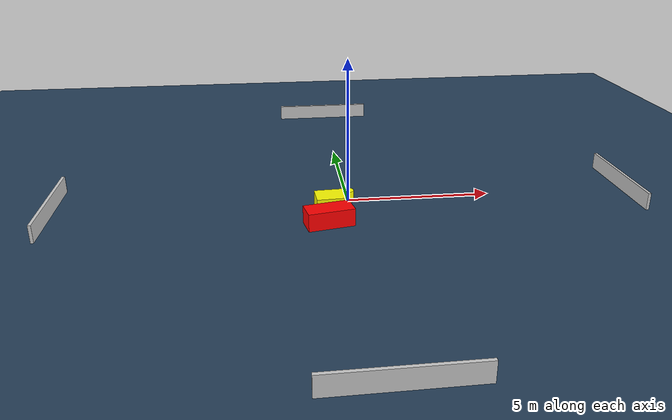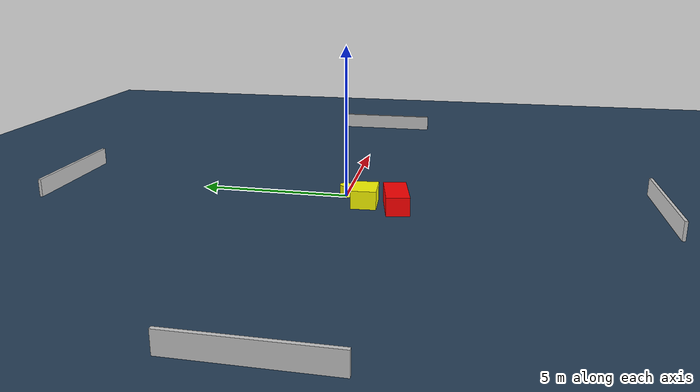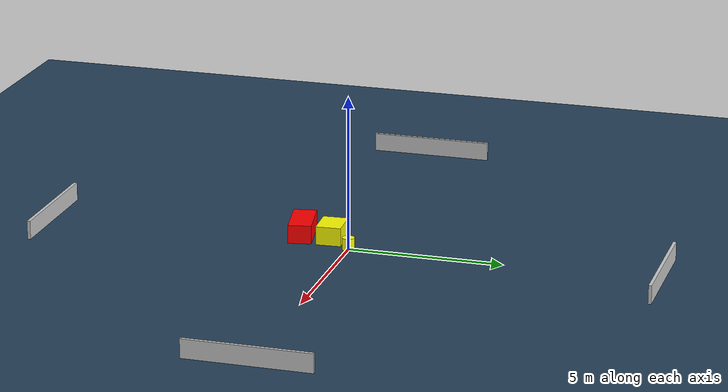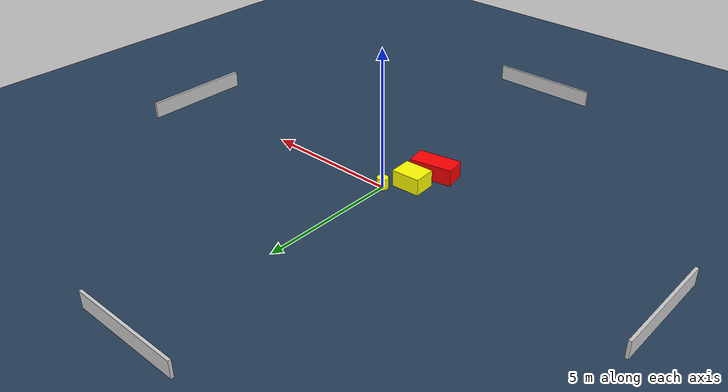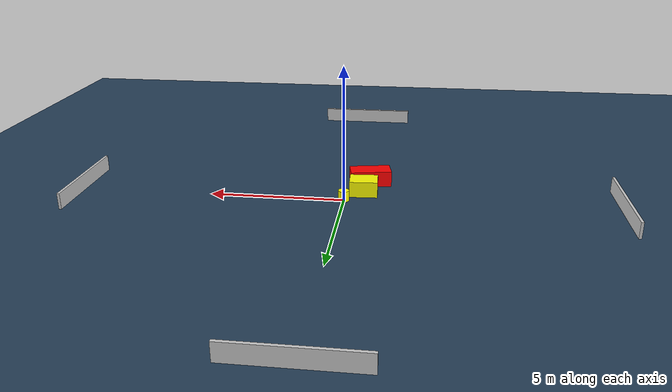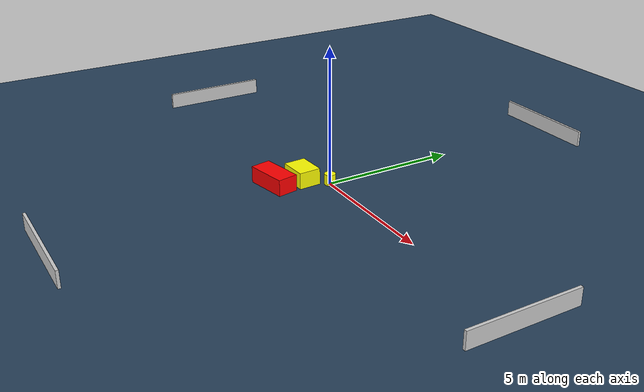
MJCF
<?xml version="1.0" ?>
<mujoco model="generated_environment">
  <option timestep="0.01" integrator="RK4" cone="elliptic"/>
  <default>
    <geom density="1"/>
  </default>
  <asset>
    <texture builtin="gradient" height="3072" name="skybox" rgb1="0.3 0.5 0.7" rgb2="0 0 0" type="skybox" width="512"/>
    <texture builtin="checker" height="300" name="groundplane" rgb1="0.2 0.3 0.4" rgb2="0.1 0.2 0.3" type="2d" width="300"/>
    <material name="groundplane" reflectance="0.2" texrepeat="5 5" texture="groundplane"/>
  </asset>
  <worldbody>
    <light dir="0 0 -1" directional="true" pos="0 0 1.5"/>
    <geom condim="3" friction="0.5 0.005 0.001" material="groundplane" name="floor" pos="0 0 0" size="0 0 0.05" type="plane"/>
    <body name="walls">
      <geom name="wall_1" condim="4" pos="-10.0 0.0 0.3" rgba="0.800000011920929 0.800000011920929 0.800000011920929 1.0" size="0.05 2.0 0.3" type="box"/>
      <geom name="wall_2" condim="4" pos="10.0 0.0 0.3" rgba="0.800000011920929 0.800000011920929 0.800000011920929 1.0" size="0.05 2.0 0.3" type="box"/>
      <geom name="wall_3" condim="4" pos="0.0 -10.0 0.3" rgba="0.800000011920929 0.800000011920929 0.800000011920929 1.0" size="2.0 0.05 0.3" type="box"/>
      <geom name="wall_4" condim="4" pos="0.0 10.0 0.3" rgba="0.800000011920929 0.800000011920929 0.800000011920929 1.0" size="2.0 0.05 0.3" type="box"/>
    </body>
    <body name="robot">
      <joint name="joint_x" type="slide" pos="0 0 0" axis="1 0 0"/>
      <joint name="joint_y" type="slide" pos="0 0 0" axis="0 1 0"/>
      <geom name="robot" type="cylinder" pos="0.0 0.0 0.2" size="0.2 0.2 0.0" mass="5.0" friction="1.0 0.005 0.0001" condim="4" rgba="1.0 1.0 0.0 1.0"/>
    </body>
    <body name="obstacle_1_movable">
      <geom name="obstacle_1_movable" condim="4" pos="-0.6687550425588757 -0.7434758236932735 0.3" euler="0 0 3.029820435769821" friction="0.0 0.005 0.001" rgba="1.0 1.0 0.0 1.0" size="0.5222658592842728 0.4056766489420234 0.3" type="box" mass="0.1"/>
      <joint type="free"/>
    </body>
    <body name="obstacle_2_static">
      <geom name="obstacle_2_static" condim="4" pos="-0.8305063968314366 -1.7766946068316223 0.3" euler="0 0 190.69556428774692" friction="0.0 0.005 0.001" rgba="1.0 0.0 0.0 1.0" size="0.7804762445826179 0.37389457850134955 0.3" type="box"/>
    </body>
  </worldbody>
  <actuator>
    <motor name="actuator_x" joint="joint_x" gear="1" ctrlrange="-1 1"/>
    <motor name="actuator_y" joint="joint_y" gear="1" ctrlrange="-1 1"/>
  </actuator>
</mujoco>
